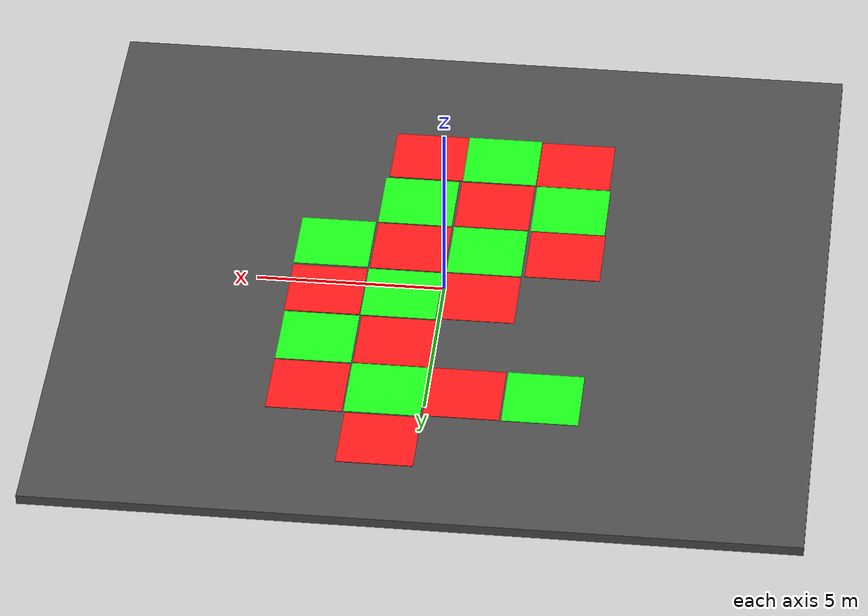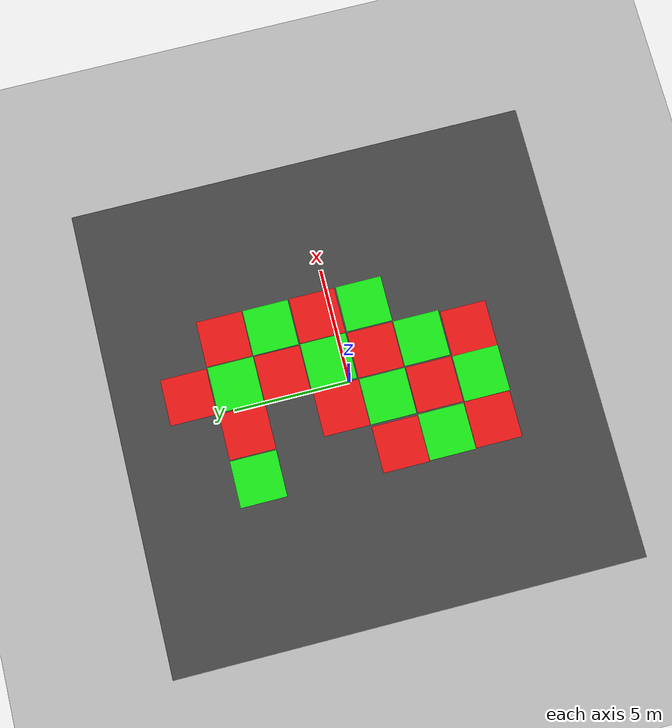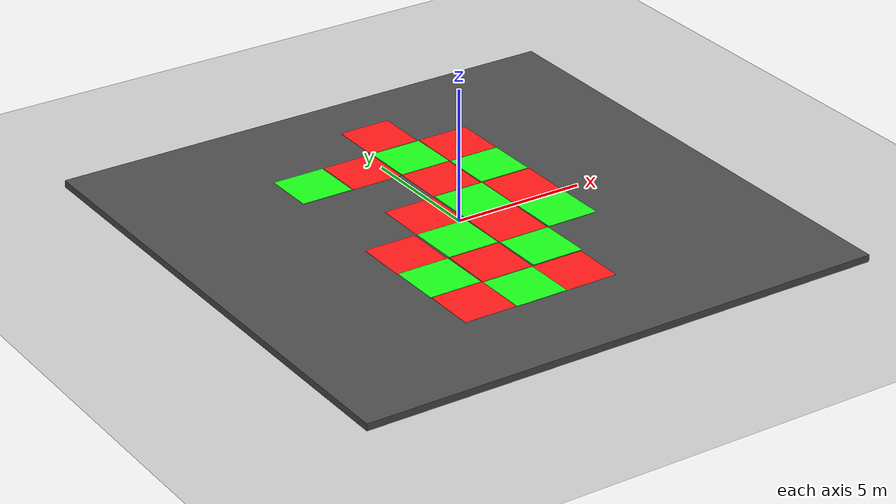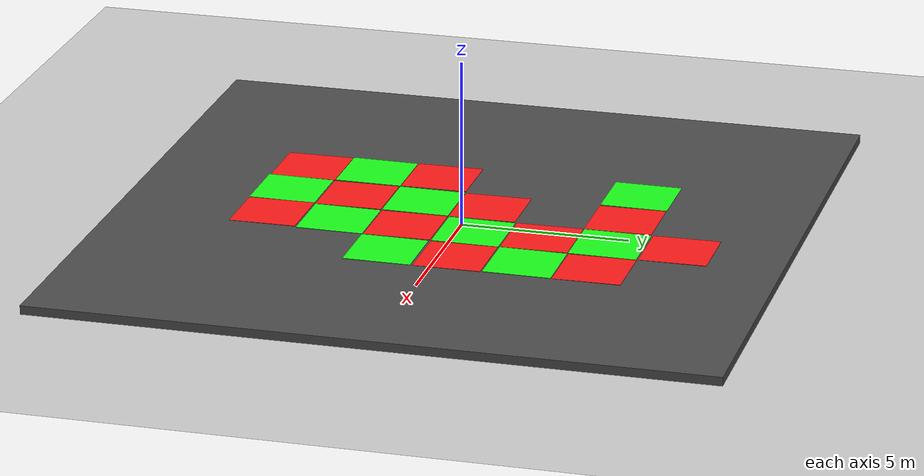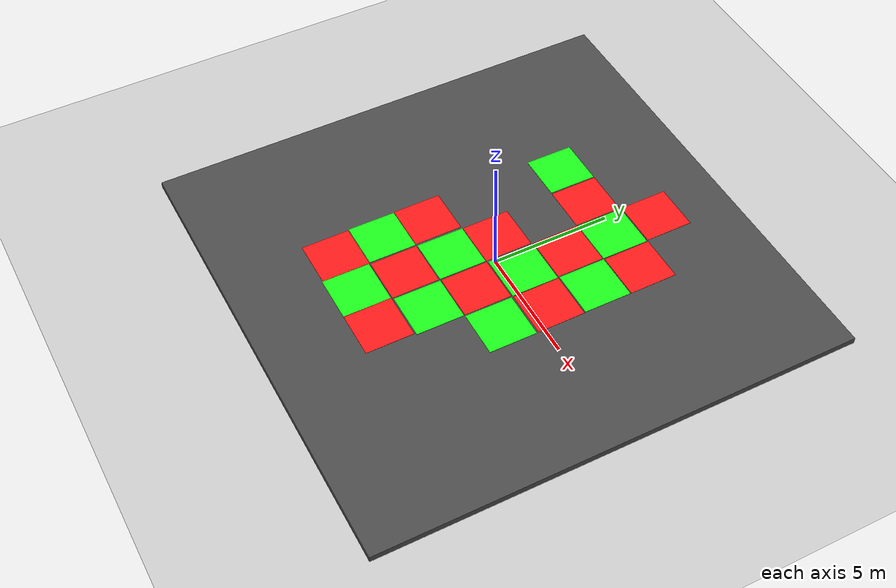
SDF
<sdf version="1.6">
 <world name="default">
  <light name="sun" type="directional">
   <pose>0 0 10 0 -0 0</pose>
   <diffuse>0.8 0.8 0.8 1</diffuse>
   <specular>0.1 0.1 0.1 1</specular>
   <attenuation>
    <range>1000</range>
    <constant>0.9</constant>
    <linear>0.01</linear>
    <quadratic>0.001</quadratic>
   </attenuation>
   <direction>-0.5 0.5 -1</direction>
  </light>
  <model name="ground_plane">
   <static>1</static>
   <link name="link">
    <collision name="collision">
     <geometry><plane><normal>0 0 1</normal><size>100 100</size></plane></geometry>
     <surface><friction><ode><mu>100</mu><mu2>50</mu2></ode></friction></surface>
    </collision>
    <visual name="visual">
     <cast_shadows>0</cast_shadows>
     <geometry><plane><normal>0 0 1</normal><size>100 100</size></plane></geometry>
     <material>
      <script><uri>file://media/materials/scripts/gazebo.material</uri><name>Gazebo/Grey</name></script>
     </material>
    </visual>
   </link>
  </model>
  <gravity>0 0 -9.8</gravity>
  <magnetic_field>6e-06 2.3e-05 -4.2e-05</magnetic_field>
  <atmosphere type="adiabatic"/>
  <physics name="default_physics" default="0" type="ode">
   <max_step_size>0.001</max_step_size>
   <real_time_factor>1</real_time_factor>
   <real_time_update_rate>1000</real_time_update_rate>
  </physics>
  <scene><ambient>0.4 0.4 0.4 1</ambient><background>0.7 0.7 0.7 1</background><shadows>1</shadows></scene>
  <spherical_coordinates>
   <surface_model>EARTH_WGS84</surface_model>
   <latitude_deg>0</latitude_deg>
   <longitude_deg>0</longitude_deg>
   <elevation>0</elevation>
   <heading_deg>0</heading_deg>
  </spherical_coordinates>
  <model name="grey_wall">
   <static>1</static>
   <link name="link">
    <pose>0 0 1.4 0 -0 0</pose>
    <collision name="collision">
     <geometry><box><size>2 0.2 2</size></box></geometry>
     <surface><friction><ode><mu>1000</mu><mu2>500</mu2></ode></friction></surface>
    </collision>
    <visual name="visual">
     <cast_shadows>0</cast_shadows>
     <geometry><box><size>2 0.2 2</size></box></geometry>
     <material>
      <script>
       <uri>model://grey_wall/materials/scripts</uri>
       <uri>model://grey_wall/materials/textures</uri>
       <name>vrc/grey_wall</name>
      </script>
      <ambient>1 0.1 0.1 0</ambient>
     </material>
    </visual>
   </link>
   <pose>-1.0141 2.00016 0.148263 1.57591 -0 0</pose>
  </model>
  <model name="grey_wall_0">
   <static>1</static>
   <link name="link">
    <pose>0 0 1.4 0 -0 0</pose>
    <collision name="collision">
     <geometry><box><size>2 0.2 2</size></box></geometry>
     <surface><friction><ode><mu>1</mu><mu2>5</mu2></ode></friction></surface>
    </collision>
    <visual name="visual">
     <cast_shadows>0</cast_shadows>
     <geometry><box><size>2 0.2 2</size></box></geometry>
     <material>
      <script>
       <uri>model://grey_wall/materials/scripts</uri>
       <uri>model://grey_wall/materials/textures</uri>
       <name>vrc/grey_wall</name>
      </script>
      <ambient>0.1 1 0.1 0</ambient>
     </material>
    </visual>
   </link>
   <pose>-1.01455 -0.021633 0.143994 1.56651 -0 0</pose>
  </model>
  <model name="asphalt_plane_0">
   <link name="link">
    <inertial>
     <inertia><ixx>nan</ixx><ixy>0</ixy><ixz>0</ixz><iyy>nan</iyy><iyz>0</iyz><izz>nan</izz></inertia>
     <mass>0</mass>
    </inertial>
    <visual name="visual">
     <cast_shadows>0</cast_shadows>
     <geometry><box><size>20 20 0.468848</size></box></geometry>
     <material>
      <script>
       <uri>model://asphalt_plane/materials/scripts</uri>
       <uri>model://asphalt_plane/materials/textures</uri>
       <name>vrc/asphalt</name>
      </script>
      <ambient>0.5 0.5 0.5 1</ambient>
      <diffuse>0.5 0.5 0.5 1</diffuse>
      <specular>0.2 0.2 0.2 1</specular>
      <emissive>0 0 0 1</emissive>
     </material>
    </visual>
    <collision name="collision">
     <geometry><box><size>20 20 0.468848</size></box></geometry>
     <surface>
      <friction>
       <ode><mu>1</mu><mu2>1</mu2><fdir1>0 0 0</fdir1><slip1>0</slip1><slip2>0</slip2></ode>
       <torsional>
        <coefficient>1</coefficient>
        <patch_radius>0</patch_radius>
        <surface_radius>0</surface_radius>
        <use_patch_radius>1</use_patch_radius>
        <ode><slip>0</slip></ode>
       </torsional>
      </friction>
      <bounce><restitution_coefficient>0</restitution_coefficient><threshold>1e+06</threshold></bounce>
      <contact>
       <collide_without_contact>0</collide_without_contact>
       <collide_without_contact_bitmask>1</collide_without_contact_bitmask>
       <collide_bitmask>1</collide_bitmask>
       <ode>
        <soft_cfm>0</soft_cfm>
        <soft_erp>0.2</soft_erp>
        <kp>1e+13</kp>
        <kd>1</kd>
        <max_vel>0.01</max_vel>
        <min_depth>0</min_depth>
       </ode>
       <bullet>
        <split_impulse>1</split_impulse>
        <split_impulse_penetration_threshold>-0.01</split_impulse_penetration_threshold>
        <soft_cfm>0</soft_cfm>
        <soft_erp>0.2</soft_erp>
        <kp>1e+13</kp>
        <kd>1</kd>
       </bullet>
      </contact>
     </surface>
    </collision>
   </link>
   <static>1</static>
   <pose>-0.095957 -0.079209 0 0 -0 0</pose>
  </model>
  <model name="grey_wall_0_clone">
   <static>1</static>
   <link name="link">
    <pose>0 0 1.4 0 -0 0</pose>
    <collision name="collision">
     <geometry><box><size>2 0.2 2</size></box></geometry>
     <surface><friction><ode><mu>1</mu><mu2>5</mu2></ode></friction></surface>
    </collision>
    <visual name="visual">
     <cast_shadows>0</cast_shadows>
     <geometry><box><size>2 0.2 2</size></box></geometry>
     <material>
      <script>
       <uri>model://grey_wall/materials/scripts</uri>
       <uri>model://grey_wall/materials/textures</uri>
       <name>vrc/grey_wall</name>
      </script>
      <ambient>0.1 1 0.1 0</ambient>
     </material>
    </visual>
   </link>
   <pose>-3.05425 6.07454 0.144086 1.56651 -0 0</pose>
  </model>
  <model name="grey_wall_clone">
   <static>1</static>
   <link name="link">
    <pose>0 0 1.4 0 -0 0</pose>
    <collision name="collision">
     <geometry><box><size>2 0.2 2</size></box></geometry>
     <surface><friction><ode><mu>1000</mu><mu2>500</mu2></ode></friction></surface>
    </collision>
    <visual name="visual">
     <cast_shadows>0</cast_shadows>
     <geometry><box><size>2 0.2 2</size></box></geometry>
     <material>
      <script>
       <uri>model://grey_wall/materials/scripts</uri>
       <uri>model://grey_wall/materials/textures</uri>
       <name>vrc/grey_wall</name>
      </script>
      <ambient>1 0.1 0.1 0</ambient>
     </material>
    </visual>
   </link>
   <pose>-1.01195 6.07132 0.152279 1.57591 -0 0</pose>
  </model>
  <model name="grey_wall_0_clone_clone">
   <static>1</static>
   <link name="link">
    <pose>0 0 1.4 0 -0 0</pose>
    <collision name="collision">
     <geometry><box><size>2 0.2 2</size></box></geometry>
     <surface><friction><ode><mu>1</mu><mu2>5</mu2></ode></friction></surface>
    </collision>
    <visual name="visual">
     <cast_shadows>0</cast_shadows>
     <geometry><box><size>2 0.2 2</size></box></geometry>
     <material>
      <script>
       <uri>model://grey_wall/materials/scripts</uri>
       <uri>model://grey_wall/materials/textures</uri>
       <name>vrc/grey_wall</name>
      </script>
      <ambient>0.1 1 0.1 0</ambient>
     </material>
    </visual>
   </link>
   <pose>1.05933 2.04081 0.144086 1.56651 -0 0</pose>
  </model>
  <model name="grey_wall_0_clone_clone_0">
   <static>1</static>
   <link name="link">
    <pose>0 0 1.4 0 -0 0</pose>
    <collision name="collision">
     <geometry><box><size>2 0.2 2</size></box></geometry>
     <surface><friction><ode><mu>1</mu><mu2>5</mu2></ode></friction></surface>
    </collision>
    <visual name="visual">
     <cast_shadows>0</cast_shadows>
     <geometry><box><size>2 0.2 2</size></box></geometry>
     <material>
      <script>
       <uri>model://grey_wall/materials/scripts</uri>
       <uri>model://grey_wall/materials/textures</uri>
       <name>vrc/grey_wall</name>
      </script>
      <ambient>0.1 1 0.1 0</ambient>
     </material>
    </visual>
   </link>
   <pose>3.06327 4.08885 0.144086 1.56651 -0 0</pose>
  </model>
  <model name="grey_wall_clone_clone">
   <static>1</static>
   <link name="link">
    <pose>0 0 1.4 0 -0 0</pose>
    <collision name="collision">
     <geometry><box><size>2 0.2 2</size></box></geometry>
     <surface><friction><ode><mu>1000</mu><mu2>500</mu2></ode></friction></surface>
    </collision>
    <visual name="visual">
     <cast_shadows>0</cast_shadows>
     <geometry><box><size>2 0.2 2</size></box></geometry>
     <material>
      <script>
       <uri>model://grey_wall/materials/scripts</uri>
       <uri>model://grey_wall/materials/textures</uri>
       <name>vrc/grey_wall</name>
      </script>
      <ambient>1 0.1 0.1 0</ambient>
     </material>
    </visual>
   </link>
   <pose>-1.01727 -2.05527 0.152279 1.57591 -0 0</pose>
  </model>
  <model name="grey_wall_clone_clone_0">
   <static>1</static>
   <link name="link">
    <pose>0 0 1.4 0 -0 0</pose>
    <collision name="collision">
     <geometry><box><size>2 0.2 2</size></box></geometry>
     <surface><friction><ode><mu>1000</mu><mu2>500</mu2></ode></friction></surface>
    </collision>
    <visual name="visual">
     <cast_shadows>0</cast_shadows>
     <geometry><box><size>2 0.2 2</size></box></geometry>
     <material>
      <script>
       <uri>model://grey_wall/materials/scripts</uri>
       <uri>model://grey_wall/materials/textures</uri>
       <name>vrc/grey_wall</name>
      </script>
      <ambient>1 0.1 0.1 0</ambient>
     </material>
    </visual>
   </link>
   <pose>-3.10622 -0.032077 0.152279 1.57591 -0 0</pose>
  </model>
  <model name="grey_wall_clone_clone_1">
   <static>1</static>
   <link name="link">
    <pose>0 0 1.4 0 -0 0</pose>
    <collision name="collision">
     <geometry><box><size>2 0.2 2</size></box></geometry>
     <surface><friction><ode><mu>1000</mu><mu2>500</mu2></ode></friction></surface>
    </collision>
    <visual name="visual">
     <cast_shadows>0</cast_shadows>
     <geometry><box><size>2 0.2 2</size></box></geometry>
     <material>
      <script>
       <uri>model://grey_wall/materials/scripts</uri>
       <uri>model://grey_wall/materials/textures</uri>
       <name>vrc/grey_wall</name>
      </script>
      <ambient>1 0.1 0.1 0</ambient>
     </material>
    </visual>
   </link>
   <pose>3.08245 2.04342 0.152279 1.57591 -0 0</pose>
  </model>
  <model name="grey_wall_clone_clone_2">
   <static>1</static>
   <link name="link">
    <pose>0 0 1.4 0 -0 0</pose>
    <collision name="collision">
     <geometry><box><size>2 0.2 2</size></box></geometry>
     <surface><friction><ode><mu>1000</mu><mu2>500</mu2></ode></friction></surface>
    </collision>
    <visual name="visual">
     <cast_shadows>0</cast_shadows>
     <geometry><box><size>2 0.2 2</size></box></geometry>
     <material>
      <script>
       <uri>model://grey_wall/materials/scripts</uri>
       <uri>model://grey_wall/materials/textures</uri>
       <name>vrc/grey_wall</name>
      </script>
      <ambient>1 0.1 0.1 0</ambient>
     </material>
    </visual>
   </link>
   <pose>3.06771 6.12106 0.152279 1.57591 -0 0</pose>
  </model>
  <model name="grey_wall_clone_clone_3">
   <static>1</static>
   <link name="link">
    <pose>0 0 1.4 0 -0 0</pose>
    <collision name="collision">
     <geometry><box><size>2 0.2 2</size></box></geometry>
     <surface><friction><ode><mu>1000</mu><mu2>500</mu2></ode></friction></surface>
    </collision>
    <visual name="visual">
     <cast_shadows>0</cast_shadows>
     <geometry><box><size>2 0.2 2</size></box></geometry>
     <material>
      <script>
       <uri>model://grey_wall/materials/scripts</uri>
       <uri>model://grey_wall/materials/textures</uri>
       <name>vrc/grey_wall</name>
      </script>
      <ambient>1 0.1 0.1 0</ambient>
     </material>
    </visual>
   </link>
   <pose>1.00351 8.14369 0.152279 1.57591 -0 0</pose>
  </model>
  <model name="grey_wall_clone_clone_4">
   <static>1</static>
   <link name="link">
    <pose>0 0 1.4 0 -0 0</pose>
    <collision name="collision">
     <geometry><box><size>2 0.2 2</size></box></geometry>
     <surface><friction><ode><mu>1000</mu><mu2>500</mu2></ode></friction></surface>
    </collision>
    <visual name="visual">
     <cast_shadows>0</cast_shadows>
     <geometry><box><size>2 0.2 2</size></box></geometry>
     <material>
      <script>
       <uri>model://grey_wall/materials/scripts</uri>
       <uri>model://grey_wall/materials/textures</uri>
       <name>vrc/grey_wall</name>
      </script>
      <ambient>1 0.1 0.1 0</ambient>
     </material>
    </visual>
   </link>
   <pose>1.01794 4.07632 0.152279 1.57591 -0 0</pose>
  </model>
  <model name="grey_wall_clone_clone_5">
   <static>1</static>
   <link name="link">
    <pose>0 0 1.4 0 -0 0</pose>
    <collision name="collision">
     <geometry><box><size>2 0.2 2</size></box></geometry>
     <surface><friction><ode><mu>1000</mu><mu2>500</mu2></ode></friction></surface>
    </collision>
    <visual name="visual">
     <cast_shadows>0</cast_shadows>
     <geometry><box><size>2 0.2 2</size></box></geometry>
     <material>
      <script>
       <uri>model://grey_wall/materials/scripts</uri>
       <uri>model://grey_wall/materials/textures</uri>
       <name>vrc/grey_wall</name>
      </script>
      <ambient>1 0.1 0.1 0</ambient>
     </material>
    </visual>
   </link>
   <pose>1.03264 -0.00432 0.152279 1.57591 -0 0</pose>
  </model>
  <model name="grey_wall_clone_clone_6">
   <static>1</static>
   <link name="link">
    <pose>0 0 1.4 0 -0 0</pose>
    <collision name="collision">
     <geometry><box><size>2 0.2 2</size></box></geometry>
     <surface><friction><ode><mu>1000</mu><mu2>500</mu2></ode></friction></surface>
    </collision>
    <visual name="visual">
     <cast_shadows>0</cast_shadows>
     <geometry><box><size>2 0.2 2</size></box></geometry>
     <material>
      <script>
       <uri>model://grey_wall/materials/scripts</uri>
       <uri>model://grey_wall/materials/textures</uri>
       <name>vrc/grey_wall</name>
      </script>
      <ambient>1 0.1 0.1 0</ambient>
     </material>
    </visual>
   </link>
   <pose>-3.04739 -4.06202 0.152279 1.57591 -0 0</pose>
  </model>
  <model name="grey_wall_clone_clone_7">
   <static>1</static>
   <link name="link">
    <pose>0 0 1.4 0 -0 0</pose>
    <collision name="collision">
     <geometry><box><size>2 0.2 2</size></box></geometry>
     <surface><friction><ode><mu>1000</mu><mu2>500</mu2></ode></friction></surface>
    </collision>
    <visual name="visual">
     <cast_shadows>0</cast_shadows>
     <geometry><box><size>2 0.2 2</size></box></geometry>
     <material>
      <script>
       <uri>model://grey_wall/materials/scripts</uri>
       <uri>model://grey_wall/materials/textures</uri>
       <name>vrc/grey_wall</name>
      </script>
      <ambient>1 0.1 0.1 0</ambient>
     </material>
    </visual>
   </link>
   <pose>0.956855 -4.09321 0.152279 1.57591 -0 0</pose>
  </model>
  <model name="grey_wall_0_clone_clone_1">
   <static>1</static>
   <link name="link">
    <pose>0 0 1.4 0 -0 0</pose>
    <collision name="collision">
     <geometry><box><size>2 0.2 2</size></box></geometry>
     <surface><friction><ode><mu>1</mu><mu2>5</mu2></ode></friction></surface>
    </collision>
    <visual name="visual">
     <cast_shadows>0</cast_shadows>
     <geometry><box><size>2 0.2 2</size></box></geometry>
     <material>
      <script>
       <uri>model://grey_wall/materials/scripts</uri>
       <uri>model://grey_wall/materials/textures</uri>
       <name>vrc/grey_wall</name>
      </script>
      <ambient>0.1 1 0.1 0</ambient>
     </material>
    </visual>
   </link>
   <pose>1.0333 6.09706 0.144086 1.56651 -0 0</pose>
  </model>
  <model name="grey_wall_0_clone_clone_2">
   <static>1</static>
   <link name="link">
    <pose>0 0 1.4 0 -0 0</pose>
    <collision name="collision">
     <geometry><box><size>2 0.2 2</size></box></geometry>
     <surface><friction><ode><mu>1</mu><mu2>5</mu2></ode></friction></surface>
    </collision>
    <visual name="visual">
     <cast_shadows>0</cast_shadows>
     <geometry><box><size>2 0.2 2</size></box></geometry>
     <material>
      <script>
       <uri>model://grey_wall/materials/scripts</uri>
       <uri>model://grey_wall/materials/textures</uri>
       <name>vrc/grey_wall</name>
      </script>
      <ambient>0.1 1 0.1 0</ambient>
     </material>
    </visual>
   </link>
   <pose>3.08986 -0.02476 0.144086 1.56651 -0 0</pose>
  </model>
  <model name="grey_wall_0_clone_clone_3">
   <static>1</static>
   <link name="link">
    <pose>0 0 1.4 0 -0 0</pose>
    <collision name="collision">
     <geometry><box><size>2 0.2 2</size></box></geometry>
     <surface><friction><ode><mu>1</mu><mu2>5</mu2></ode></friction></surface>
    </collision>
    <visual name="visual">
     <cast_shadows>0</cast_shadows>
     <geometry><box><size>2 0.2 2</size></box></geometry>
     <material>
      <script>
       <uri>model://grey_wall/materials/scripts</uri>
       <uri>model://grey_wall/materials/textures</uri>
       <name>vrc/grey_wall</name>
      </script>
      <ambient>0.1 1 0.1 0</ambient>
     </material>
    </visual>
   </link>
   <pose>-3.07681 -2.04705 0.144086 1.56651 -0 0</pose>
  </model>
  <model name="grey_wall_0_clone_clone_4">
   <static>1</static>
   <link name="link">
    <pose>0 0 1.4 0 -0 0</pose>
    <collision name="collision">
     <geometry><box><size>2 0.2 2</size></box></geometry>
     <surface><friction><ode><mu>1</mu><mu2>5</mu2></ode></friction></surface>
    </collision>
    <visual name="visual">
     <cast_shadows>0</cast_shadows>
     <geometry><box><size>2 0.2 2</size></box></geometry>
     <material>
      <script>
       <uri>model://grey_wall/materials/scripts</uri>
       <uri>model://grey_wall/materials/textures</uri>
       <name>vrc/grey_wall</name>
      </script>
      <ambient>0.1 1 0.1 0</ambient>
     </material>
    </visual>
   </link>
   <pose>1.04306 -2.03654 0.144086 1.56651 -0 0</pose>
  </model>
  <model name="grey_wall_0_clone_clone_5">
   <static>1</static>
   <link name="link">
    <pose>0 0 1.4 0 -0 0</pose>
    <collision name="collision">
     <geometry><box><size>2 0.2 2</size></box></geometry>
     <surface><friction><ode><mu>1</mu><mu2>5</mu2></ode></friction></surface>
    </collision>
    <visual name="visual">
     <cast_shadows>0</cast_shadows>
     <geometry><box><size>2 0.2 2</size></box></geometry>
     <material>
      <script>
       <uri>model://grey_wall/materials/scripts</uri>
       <uri>model://grey_wall/materials/textures</uri>
       <name>vrc/grey_wall</name>
      </script>
      <ambient>0.1 1 0.1 0</ambient>
     </material>
    </visual>
   </link>
   <pose>-1.03819 -4.09729 0.144086 1.56651 -0 0</pose>
  </model>
 </world>
</sdf>
